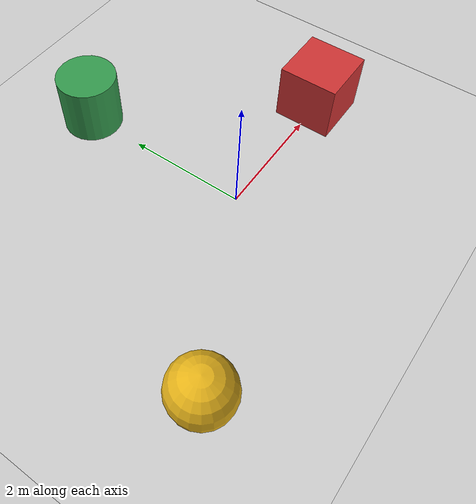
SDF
<?xml version="1.0" ?>

<!--Ground plane and three shapes scattered around the origin.-->
<sdf version="1.8">
    <world name="assignment2_world">

        <physics name="1ms" type="ignored">
            <max_step_size>0.001</max_step_size>
            <real_time_factor>1.0</real_time_factor>
        </physics>

        <!--Physics steps the simulation, UserCommands handle spawning models,
        SceneBroadcaster sends the scene out to the GUI and to RViz-->
        <plugin filename="gz-sim-physics-system" name="gz::sim::systems::Physics"/>
        <plugin filename="gz-sim-user-commands-system" name="gz::sim::systems::UserCommands"/>
        <plugin filename="gz-sim-scene-broadcaster-system" name="gz::sim::systems::SceneBroadcaster"/>

        <!-- Needed before any sensor produces data-->
        <plugin filename="gz-sim-sensors-system" name="gz::sim::systems::Sensors">
            <!--ogre2 renders black in this VM, ogre v1 works.-->
            <render_engine>ogre</render_engine>
        </plugin>

        <!--TODO: this is the black one-->

         <scene>
            <ambient>0.6 0.6 0.6 1</ambient>
            <background>0.9 0.9 0.9 1</background>
            <shadows>true</shadows>
        </scene>

        <light type="directional" name="sun">
            <cast_shadows>true</cast_shadows>
            <pose>0 0 10 0 0 0</pose>
            <diffuse>0.8 0.8 0.8 1</diffuse>
            <specular>0.2 0.2 0.2 1</specular>
            <direction>-0.5 0.1 -0.9</direction>
        </light>

        <!--Floor-->
        <model name="ground_plane">
            <static>true</static>
            <link name="link">
                <collision name="collision">
                    <geometry>
                        <plane><normal>0 0 1</normal><size>100 100</size></plane>
                    </geometry>
                </collision>
                <visual name="visual">
                    <geometry>
                        <plane><normal>0 0 1</normal><size>100 100</size></plane>
                    </geometry>
                    <material>
                        <ambient>0.8 0.8 0.8 1</ambient>
                        <diffuse>0.8 0.8 0.8 1</diffuse>
                    </material>
                </visual>
            </link>
        </model>

        <!--The obstacles-->

        <!--Ahead of the robot-->
        <model name="box">
            <static>true</static>
            <pose>2.5 0 0.5 0 0 0</pose>
            <link name="link">
                <collision name="collision">
                    <geometry>
                        <box><size>1 1 1</size></box>
                    </geometry>
                </collision>
                <visual name="visual">
                    <geometry><box><size>1 1 1</size></box></geometry>
                    <material>
                        <ambient>0.8 0.2 0.2 1</ambient>
                        <diffuse>0.8 0.2 0.2 1</diffuse>
                    </material>
                </visual>
            </link>
        </model>

        <!--To the left-->
        <model name="cylinder">
            <static>true</static>
            <pose>0 3 0.5 0 0 0</pose>
            <link name="link">
                <collision name="collision">
                    <geometry>
                        <cylinder><radius>0.5</radius><length>1.0</length></cylinder>
                    </geometry>
                </collision>
                <visual name="visual">
                    <geometry>
                        <cylinder><radius>0.5</radius><length>1.0</length></cylinder>
                    </geometry>
                    <material>
                        <ambient>0.2 0.6 0.3 1</ambient>
                        <diffuse>0.2 0.6 0.3 1</diffuse>
                    </material>
                </visual>
            </link>
        </model>

        <!--Behind and to the right-->
        <model name="sphere">
            <static>true</static>
            <pose>-3 -1.5 0.5 0 0 0</pose>
            <link name="link">
                <collision name="collision">
                    <geometry><sphere><radius>0.5</radius></sphere></geometry>
                </collision>
                <visual name="visual">
                    <geometry><sphere><radius>0.5</radius></sphere></geometry>
                    <material>
                        <ambient>0.9 0.7 0.1 1</ambient>
                        <diffuse>0.9 0.7 0.1 1</diffuse>
                    </material>
                </visual>
            </link>
        </model>

    </world>
</sdf>
